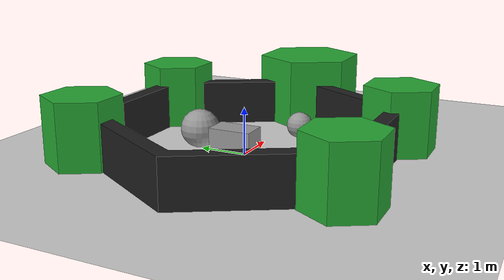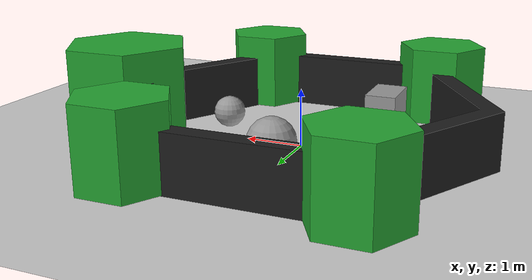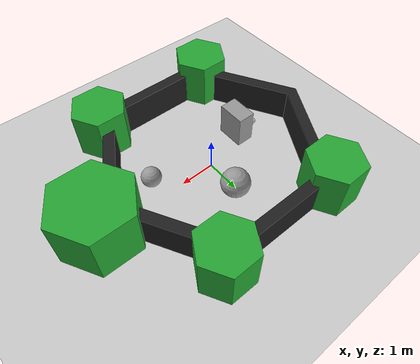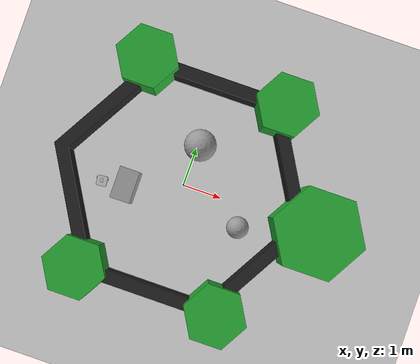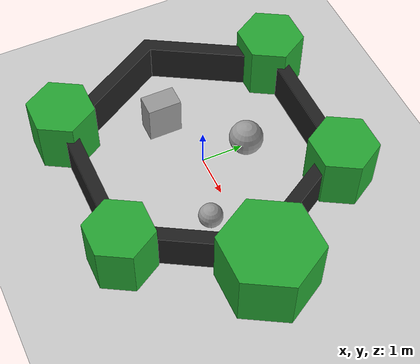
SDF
<sdf version="1.6">
 <world name="default">
  <light name="sun" type="directional">
   <pose>0 0 10 0 -0 0</pose>
   <diffuse>0.8 0.8 0.8 1</diffuse>
   <specular>0.2 0.2 0.2 1</specular>
   <attenuation>
    <range>1000</range>
    <constant>0.9</constant>
    <linear>0.01</linear>
    <quadratic>0.001</quadratic>
   </attenuation>
   <direction>-0.5 0.1 -0.9</direction>
   <spot><inner_angle>0</inner_angle><outer_angle>0</outer_angle><falloff>0</falloff></spot>
  </light>
  <model name="ground_plane">
   <static>1</static>
   <link name="link">
    <collision name="collision">
     <geometry><plane><normal>0 0 1</normal><size>100 100</size></plane></geometry>
     <surface><friction><ode><mu>100</mu><mu2>50</mu2></ode></friction></surface>
    </collision>
    <visual name="visual">
     <cast_shadows>0</cast_shadows>
     <geometry><plane><normal>0 0 1</normal><size>100 100</size></plane></geometry>
     <material>
      <script><uri>file://media/materials/scripts/gazebo.material</uri><name>Gazebo/Grey</name></script>
     </material>
    </visual>
   </link>
  </model>
  <gravity>0 0 -9.8</gravity>
  <magnetic_field>6e-06 2.3e-05 -4.2e-05</magnetic_field>
  <atmosphere type="adiabatic"/>
  <physics type="ode">
   <max_step_size>0.001</max_step_size>
   <real_time_factor>1</real_time_factor>
   <real_time_update_rate>1000</real_time_update_rate>
  </physics>
  <scene><ambient>0.4 0.4 0.4 1</ambient><background>0.7 0.7 0.7 1</background><shadows>1</shadows></scene>
  <audio><device>default</device></audio>
  <spherical_coordinates>
   <surface_model>EARTH_WGS84</surface_model>
   <latitude_deg>0</latitude_deg>
   <longitude_deg>0</longitude_deg>
   <elevation>0</elevation>
   <heading_deg>0</heading_deg>
  </spherical_coordinates>
  <model name="ros_symbol">
   <static>1</static>
   <link name="symbol">
    <collision name="head">
     <pose>3.5 0 -0.5 0 -0 0</pose>
     <geometry>
      <mesh><uri>model://turtlebot3_world/meshes/hexagon.dae</uri><scale>0.8 0.8 0.8</scale></mesh>
     </geometry>
    </collision>
    <visual name="head">
     <pose>3.5 0 -0.5 0 -0 0</pose>
     <geometry>
      <mesh><uri>model://turtlebot3_world/meshes/hexagon.dae</uri><scale>0.8 0.8 0.8</scale></mesh>
     </geometry>
     <material>
      <script><uri>file://media/materials/scripts/gazebo.material</uri><name>Gazebo/Green</name></script>
     </material>
    </visual>
    <collision name="left_hand">
     <pose>1.8 2.7 0 0 -0 0</pose>
     <geometry>
      <mesh><uri>model://turtlebot3_world/meshes/hexagon.dae</uri><scale>0.55 0.55 0.55</scale></mesh>
     </geometry>
    </collision>
    <visual name="left_hand">
     <pose>1.8 2.7 0 0 -0 0</pose>
     <geometry>
      <mesh><uri>model://turtlebot3_world/meshes/hexagon.dae</uri><scale>0.55 0.55 0.55</scale></mesh>
     </geometry>
     <material>
      <script><uri>file://media/materials/scripts/gazebo.material</uri><name>Gazebo/Green</name></script>
     </material>
    </visual>
    <collision name="right_hand">
     <pose>1.8 -2.7 0 0 -0 0</pose>
     <geometry>
      <mesh><uri>model://turtlebot3_world/meshes/hexagon.dae</uri><scale>0.55 0.55 0.55</scale></mesh>
     </geometry>
    </collision>
    <visual name="right_hand">
     <pose>1.8 -2.7 0 0 -0 0</pose>
     <geometry>
      <mesh><uri>model://turtlebot3_world/meshes/hexagon.dae</uri><scale>0.55 0.55 0.55</scale></mesh>
     </geometry>
     <material>
      <script><uri>file://media/materials/scripts/gazebo.material</uri><name>Gazebo/Green</name></script>
     </material>
    </visual>
    <collision name="left_foot">
     <pose>-1.8 2.7 0 0 -0 0</pose>
     <geometry>
      <mesh><uri>model://turtlebot3_world/meshes/hexagon.dae</uri><scale>0.55 0.55 0.55</scale></mesh>
     </geometry>
    </collision>
    <visual name="left_foot">
     <pose>-1.8 2.7 0 0 -0 0</pose>
     <geometry>
      <mesh><uri>model://turtlebot3_world/meshes/hexagon.dae</uri><scale>0.55 0.55 0.55</scale></mesh>
     </geometry>
     <material>
      <script><uri>file://media/materials/scripts/gazebo.material</uri><name>Gazebo/Green</name></script>
     </material>
    </visual>
    <collision name="right_foot">
     <pose>-1.8 -2.7 0 0 -0 0</pose>
     <geometry>
      <mesh><uri>model://turtlebot3_world/meshes/hexagon.dae</uri><scale>0.55 0.55 0.55</scale></mesh>
     </geometry>
    </collision>
    <visual name="right_foot">
     <pose>-1.8 -2.7 0 0 -0 0</pose>
     <geometry>
      <mesh><uri>model://turtlebot3_world/meshes/hexagon.dae</uri><scale>0.55 0.55 0.55</scale></mesh>
     </geometry>
     <material>
      <script><uri>file://media/materials/scripts/gazebo.material</uri><name>Gazebo/Green</name></script>
     </material>
    </visual>
    <collision name="body">
     <pose>0 0 -0.3 0 0 -1.5708</pose>
     <geometry>
      <mesh><uri>model://turtlebot3_world/meshes/wall.dae</uri><scale>0.25 0.25 0.25</scale></mesh>
     </geometry>
    </collision>
    <visual name="body">
     <pose>0 0 -0.3 0 0 -1.5708</pose>
     <geometry>
      <mesh><uri>model://turtlebot3_world/meshes/wall.dae</uri><scale>0.25 0.25 0.25</scale></mesh>
     </geometry>
     <material>
      <script><uri>file://media/materials/scripts/gazebo.material</uri><name>Gazebo/FlatBlack</name></script>
     </material>
    </visual>
   </link>
   <pose>-0.026851 -0.058675 0 0 -0 0</pose>
  </model>
  <model name="unit_sphere">
   <pose>1.64125 -0.564082 0.284091 0 -0 0</pose>
   <link name="link">
    <inertial>
     <mass>1</mass>
     <inertia><ixx>0.1</ixx><ixy>0</ixy><ixz>0</ixz><iyy>0.1</iyy><iyz>0</iyz><izz>0.1</izz></inertia>
    </inertial>
    <collision name="collision"><geometry><sphere><radius>0.284091</radius></sphere></geometry></collision>
    <visual name="visual">
     <geometry><sphere><radius>0.284091</radius></sphere></geometry>
     <material>
      <script><name>Gazebo/Grey</name><uri>file://media/materials/scripts/gazebo.material</uri></script>
     </material>
    </visual>
   </link>
  </model>
  <model name="turtlebot3_waffle">
   <pose>-2.01447 -0.505946 0.008785 0.000128 -0.004358 1.67957</pose>
   <link name="base_footprint">
    <inertial>
     <inertia><ixx>1</ixx><ixy>0</ixy><ixz>0</ixz><iyy>1</iyy><iyz>0</iyz><izz>1</izz></inertia>
     <mass>1</mass>
    </inertial>
   </link>
   <link name="base_link">
    <inertial>
     <pose>-0.064 0 0.048 0 -0 0</pose>
     <inertia><ixx>0.001</ixx><ixy>0</ixy><ixz>0</ixz><iyy>0.001</iyy><iyz>0</iyz><izz>0.001</izz></inertia>
     <mass>1</mass>
    </inertial>
    <collision name="base_collision">
     <pose>-0.064 0 0.048 0 -0 0</pose>
     <geometry><box><size>0.265 0.265 0.089</size></box></geometry>
    </collision>
    <visual name="base_visual">
     <pose>-0.064 0 0 0 -0 0</pose>
     <geometry>
      <mesh><uri>model://turtlebot3_common/meshes/waffle_base.dae</uri><scale>0.001 0.001 0.001</scale></mesh>
     </geometry>
    </visual>
   </link>
   <link name="imu_link">
    <sensor name="tb3_imu" type="imu">
     <always_on>1</always_on>
     <update_rate>200</update_rate>
     <imu>
      <angular_velocity>
       <x><noise type="gaussian"><mean>0</mean><stddev>0.0002</stddev></noise></x>
       <y><noise type="gaussian"><mean>0</mean><stddev>0.0002</stddev></noise></y>
       <z><noise type="gaussian"><mean>0</mean><stddev>0.0002</stddev></noise></z>
      </angular_velocity>
      <linear_acceleration>
       <x><noise type="gaussian"><mean>0</mean><stddev>0.017</stddev></noise></x>
       <y><noise type="gaussian"><mean>0</mean><stddev>0.017</stddev></noise></y>
       <z><noise type="gaussian"><mean>0</mean><stddev>0.017</stddev></noise></z>
      </linear_acceleration>
     </imu>
     <plugin name="turtlebot3_imu" filename="libgazebo_ros_imu_sensor.so">
      <initial_orientation_as_reference>0</initial_orientation_as_reference>
      <ros><remapping>~/out:=imu</remapping></ros>
     </plugin>
    </sensor>
    <inertial>
     <inertia><ixx>1</ixx><ixy>0</ixy><ixz>0</ixz><iyy>1</iyy><iyz>0</iyz><izz>1</izz></inertia>
     <mass>1</mass>
    </inertial>
   </link>
   <link name="base_scan">
    <inertial>
     <pose>-0.064 0 0.121 0 -0 0</pose>
     <inertia><ixx>0.001</ixx><ixy>0</ixy><ixz>0</ixz><iyy>0.001</iyy><iyz>0</iyz><izz>0.001</izz></inertia>
     <mass>0.125</mass>
    </inertial>
    <collision name="lidar_sensor_collision">
     <pose>-0.052 0 0.111 0 -0 0</pose>
     <geometry><cylinder><radius>0.0508</radius><length>0.055</length></cylinder></geometry>
    </collision>
    <visual name="lidar_sensor_visual">
     <pose>-0.064 0 0.121 0 -0 0</pose>
     <geometry>
      <mesh><uri>model://turtlebot3_common/meshes/lds.dae</uri><scale>0.001 0.001 0.001</scale></mesh>
     </geometry>
    </visual>
    <sensor name="hls_lfcd_lds" type="ray">
     <always_on>1</always_on>
     <visualize>1</visualize>
     <pose>-0.064 0 0.15 0 -0 0</pose>
     <update_rate>5</update_rate>
     <ray>
      <scan>
       <horizontal>
        <samples>360</samples>
        <resolution>1</resolution>
        <min_angle>0</min_angle>
        <max_angle>6.28</max_angle>
       </horizontal>
       <vertical><samples>1</samples><min_angle>0</min_angle><max_angle>0</max_angle></vertical>
      </scan>
      <range><min>0.12</min><max>20</max><resolution>0.015</resolution></range>
      <noise><type>gaussian</type><mean>0</mean><stddev>0.01</stddev></noise>
     </ray>
     <plugin name="turtlebot3_laserscan" filename="libgazebo_ros_ray_sensor.so">
      <ros><remapping>~/out:=scan</remapping></ros>
      <output_type>sensor_msgs/LaserScan</output_type>
      <frame_name>base_scan</frame_name>
     </plugin>
    </sensor>
   </link>
   <link name="wheel_left_link">
    <inertial>
     <pose>0 0.144 0.023 -1.57 0 0</pose>
     <inertia><ixx>0.001</ixx><ixy>0</ixy><ixz>0</ixz><iyy>0.001</iyy><iyz>0</iyz><izz>0.001</izz></inertia>
     <mass>0.1</mass>
    </inertial>
    <collision name="wheel_left_collision">
     <pose>0 0.144 0.023 -1.57 0 0</pose>
     <geometry><cylinder><radius>0.033</radius><length>0.018</length></cylinder></geometry>
     <surface>
      <friction>
       <ode><mu>100000</mu><mu2>100000</mu2><fdir1>0 0 0</fdir1><slip1>0</slip1><slip2>0</slip2></ode>
      </friction>
      <contact>
       <ode>
        <soft_cfm>0</soft_cfm>
        <soft_erp>0.2</soft_erp>
        <kp>100000</kp>
        <kd>1</kd>
        <max_vel>0.01</max_vel>
        <min_depth>0.001</min_depth>
       </ode>
      </contact>
     </surface>
    </collision>
    <visual name="wheel_left_visual">
     <pose>0 0.144 0.023 0 -0 0</pose>
     <geometry>
      <mesh><uri>model://turtlebot3_common/meshes/tire.dae</uri><scale>0.001 0.001 0.001</scale></mesh>
     </geometry>
    </visual>
   </link>
   <link name="wheel_right_link">
    <inertial>
     <pose>0 -0.144 0.023 -1.57 0 0</pose>
     <inertia><ixx>0.001</ixx><ixy>0</ixy><ixz>0</ixz><iyy>0.001</iyy><iyz>0</iyz><izz>0.001</izz></inertia>
     <mass>0.1</mass>
    </inertial>
    <collision name="wheel_right_collision">
     <pose>0 -0.144 0.023 -1.57 0 0</pose>
     <geometry><cylinder><radius>0.033</radius><length>0.018</length></cylinder></geometry>
     <surface>
      <friction>
       <ode><mu>100000</mu><mu2>100000</mu2><fdir1>0 0 0</fdir1><slip1>0</slip1><slip2>0</slip2></ode>
      </friction>
      <contact>
       <ode>
        <soft_cfm>0</soft_cfm>
        <soft_erp>0.2</soft_erp>
        <kp>100000</kp>
        <kd>1</kd>
        <max_vel>0.01</max_vel>
        <min_depth>0.001</min_depth>
       </ode>
      </contact>
     </surface>
    </collision>
    <visual name="wheel_right_visual">
     <pose>0 -0.144 0.023 0 -0 0</pose>
     <geometry>
      <mesh><uri>model://turtlebot3_common/meshes/tire.dae</uri><scale>0.001 0.001 0.001</scale></mesh>
     </geometry>
    </visual>
   </link>
   <link name="caster_back_right_link">
    <pose>-0.177 -0.064 -0.004 0 -0 0</pose>
    <inertial>
     <mass>0.001</mass>
     <inertia><ixx>1e-05</ixx><ixy>0</ixy><ixz>0</ixz><iyy>1e-05</iyy><iyz>0</iyz><izz>1e-05</izz></inertia>
    </inertial>
    <collision name="collision">
     <geometry><sphere><radius>0.005</radius></sphere></geometry>
     <surface>
      <contact>
       <ode>
        <soft_cfm>0</soft_cfm>
        <soft_erp>0.2</soft_erp>
        <kp>100000</kp>
        <kd>1</kd>
        <max_vel>0.01</max_vel>
        <min_depth>0.001</min_depth>
       </ode>
      </contact>
     </surface>
    </collision>
   </link>
   <link name="caster_back_left_link">
    <pose>-0.177 0.064 -0.004 0 -0 0</pose>
    <inertial>
     <mass>0.001</mass>
     <inertia><ixx>1e-05</ixx><ixy>0</ixy><ixz>0</ixz><iyy>1e-05</iyy><iyz>0</iyz><izz>1e-05</izz></inertia>
    </inertial>
    <collision name="collision">
     <geometry><sphere><radius>0.005</radius></sphere></geometry>
     <surface>
      <contact>
       <ode>
        <soft_cfm>0</soft_cfm>
        <soft_erp>0.2</soft_erp>
        <kp>100000</kp>
        <kd>1</kd>
        <max_vel>0.01</max_vel>
        <min_depth>0.001</min_depth>
       </ode>
      </contact>
     </surface>
    </collision>
   </link>
   <link name="camera_link">
    <inertial>
     <pose>0.069 -0.047 0.107 0 -0 0</pose>
     <inertia><ixx>0.001</ixx><ixy>0</ixy><ixz>0</ixz><iyy>0.001</iyy><iyz>0</iyz><izz>0.001</izz></inertia>
     <mass>0.035</mass>
    </inertial>
    <collision name="collision">
     <pose>0 0.047 -0.005 0 -0 0</pose>
     <geometry><box><size>0.008 0.13 0.022</size></box></geometry>
    </collision>
    <pose>0.069 -0.047 0.107 0 -0 0</pose>
    <sensor name="intel_realsense_r200_depth" type="depth">
     <always_on>1</always_on>
     <update_rate>5</update_rate>
     <pose>0.064 -0.047 0.107 0 -0 0</pose>
     <camera name="realsense_depth_camera">
      <horizontal_fov>1.047</horizontal_fov>
      <image><width>320</width><height>240</height></image>
      <clip><near>0.1</near><far>100</far></clip>
     </camera>
     <plugin name="intel_realsense_r200_depth_driver" filename="libgazebo_ros_camera.so">
      <camera_name>intel_realsense_r200_depth</camera_name>
      <frame_name>camera_depth_frame</frame_name>
      <hack_baseline>0.07</hack_baseline>
      <min_depth>0.001</min_depth>
      <max_depth>5.0</max_depth>
     </plugin>
    </sensor>
    <collision name="collision">
     <pose>0 0.047 -0.005 0 -0 0</pose>
     <geometry><box><size>0.008 0.13 0.022</size></box></geometry>
    </collision>
    <pose>0.069 -0.047 0.107 0 -0 0</pose>
   </link>
   <joint name="base_joint" type="fixed">
    <parent>base_footprint</parent>
    <child>base_link</child>
    <pose>0 0 0.01 0 -0 0</pose>
   </joint>
   <joint name="wheel_left_joint" type="revolute">
    <parent>base_link</parent>
    <child>wheel_left_link</child>
    <pose>0 0.144 0.023 -1.57 0 0</pose>
    <axis>
     <xyz>0 0 1</xyz>
     <limit><lower>-1e+16</lower><upper>1e+16</upper></limit>
     <dynamics><spring_reference>0</spring_reference><spring_stiffness>0</spring_stiffness></dynamics>
    </axis>
   </joint>
   <joint name="wheel_right_joint" type="revolute">
    <parent>base_link</parent>
    <child>wheel_right_link</child>
    <pose>0 -0.144 0.023 -1.57 0 0</pose>
    <axis>
     <xyz>0 0 1</xyz>
     <limit><lower>-1e+16</lower><upper>1e+16</upper></limit>
     <dynamics><spring_reference>0</spring_reference><spring_stiffness>0</spring_stiffness></dynamics>
    </axis>
   </joint>
   <joint name="caster_back_right_joint" type="ball">
    <parent>base_link</parent>
    <child>caster_back_right_link</child>
   </joint>
   <joint name="caster_back_left_joint" type="ball">
    <parent>base_link</parent>
    <child>caster_back_left_link</child>
   </joint>
   <joint name="lidar_joint" type="fixed">
    <parent>base_link</parent>
    <child>base_scan</child>
    <pose>-0.064 0 0.121 0 -0 0</pose>
    <axis><xyz>0 0 1</xyz><limit><lower>-1e+16</lower><upper>1e+16</upper></limit></axis>
   </joint>
   <joint name="camera_joint" type="fixed">
    <parent>base_link</parent>
    <child>camera_link</child>
    <pose>0.064 -0.065 0.094 0 -0 0</pose>
    <axis><xyz>0 0 1</xyz><limit><lower>-1e+16</lower><upper>1e+16</upper></limit></axis>
   </joint>
   <plugin name="turtlebot3_diff_drive" filename="libgazebo_ros_diff_drive.so">
    <ros><remapping>/tf:=tf</remapping></ros>
    <update_rate>30</update_rate>
    <left_joint>wheel_left_joint</left_joint>
    <right_joint>wheel_right_joint</right_joint>
    <wheel_separation>0.287</wheel_separation>
    <wheel_diameter>0.066</wheel_diameter>
    <max_wheel_torque>20</max_wheel_torque>
    <max_wheel_acceleration>1.0</max_wheel_acceleration>
    <command_topic>cmd_vel</command_topic>
    <publish_odom>1</publish_odom>
    <publish_odom_tf>1</publish_odom_tf>
    <publish_wheel_tf>0</publish_wheel_tf>
    <odometry_topic>odom</odometry_topic>
    <odometry_frame>odom</odometry_frame>
    <robot_base_frame>base_footprint</robot_base_frame>
   </plugin>
   <plugin name="turtlebot3_joint_state" filename="libgazebo_ros_joint_state_publisher.so">
    <ros><remapping>~/out:=joint_states</remapping></ros>
    <update_rate>30</update_rate>
    <joint_name>wheel_left_joint</joint_name>
    <joint_name>wheel_right_joint</joint_name>
   </plugin>
  </model>
  <model name="unit_sphere_0">
   <pose>0.077056 1.08598 0.409586 0 -0 0</pose>
   <link name="link">
    <inertial>
     <mass>1</mass>
     <inertia><ixx>0.1</ixx><ixy>0</ixy><ixz>0</ixz><iyy>0.1</iyy><iyz>0</iyz><izz>0.1</izz></inertia>
    </inertial>
    <collision name="collision"><geometry><sphere><radius>0.409586</radius></sphere></geometry></collision>
    <visual name="visual">
     <geometry><sphere><radius>0.409586</radius></sphere></geometry>
     <material>
      <script><name>Gazebo/Grey</name><uri>file://media/materials/scripts/gazebo.material</uri></script>
     </material>
    </visual>
   </link>
  </model>
  <model name="unit_box">
   <pose>-1.35007 -0.476276 0.499996 -9e-06 3e-06 0.000719</pose>
   <link name="link">
    <inertial>
     <mass>1</mass>
     <inertia>
      <ixx>0.166667</ixx>
      <ixy>0</ixy>
      <ixz>0</ixz>
      <iyy>0.166667</iyy>
      <iyz>0</iyz>
      <izz>0.166667</izz>
     </inertia>
    </inertial>
    <collision name="collision"><geometry><box><size>0.509151 0.810546 1</size></box></geometry></collision>
    <visual name="visual">
     <geometry><box><size>0.509151 0.810546 1</size></box></geometry>
     <material>
      <script><name>Gazebo/Grey</name><uri>file://media/materials/scripts/gazebo.material</uri></script>
     </material>
    </visual>
   </link>
  </model>
 </world>
</sdf>
